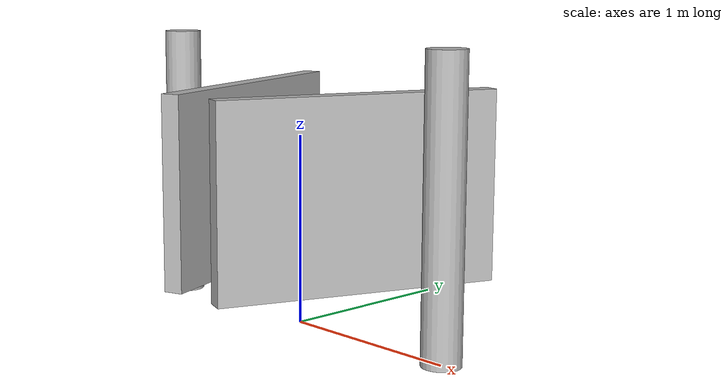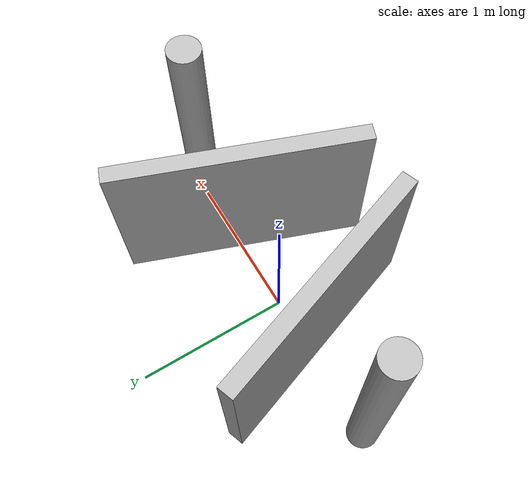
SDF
<?xml version="1.0" ?>
<sdf version="1.6">
  <model name="gate">
    <!-- Left Cylinder -->
    <link name="left_cylinder">
      <pose>-1 0 0.75 0 0 0</pose>
      <collision name="left_cylinder_collision">
        <geometry>
          <cylinder>
            <radius>0.1</radius>
            <length>1.5</length>
          </cylinder>
        </geometry>
      </collision>
      <visual name="left_cylinder_visual">
        <geometry>
          <cylinder>
            <radius>0.1</radius>
            <length>1.5</length>
          </cylinder>
        </geometry>
      </visual>
    </link>

    <!-- Right Cylinder -->
    <link name="right_cylinder">
      <pose>1 0 0.75 0 0 0</pose>
      <collision name="right_cylinder_collision">
        <geometry>
          <cylinder>
            <radius>0.1</radius>
            <length>1.5</length>
          </cylinder>
        </geometry>
      </collision>
      <visual name="right_cylinder_visual">
        <geometry>
          <cylinder>
            <radius>0.1</radius>
            <length>1.5</length>
          </cylinder>
        </geometry>
      </visual>
    </link>

    <!-- Left Door -->
    <link name="left_door">
      <pose>-0.425 0 0.75 0 0 -1.2217</pose>
      <collision name="left_door_collision">
        <geometry>
          <box>
            <size>1.5 0.1 1</size>
          </box>
        </geometry>
      </collision>
      <visual name="left_door_visual">
        <geometry>
          <box>
            <size>1.5 0.1 1</size>
          </box>
        </geometry>
      </visual>
    </link>

    <!-- Right Door -->
    <link name="right_door">
      <pose>0.425 0 0.75 0 0 1.2217</pose>
      <collision name="right_door_collision">
        <geometry>
          <box>
            <size>1.5 0.1 1</size>
          </box>
        </geometry>
      </collision>
      <visual name="right_door_visual">
        <geometry>
          <box>
            <size>1.5 0.1 1</size>
          </box>
        </geometry>
      </visual>
    </link>
  </model>
</sdf>
